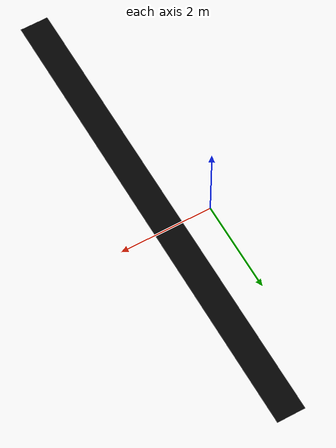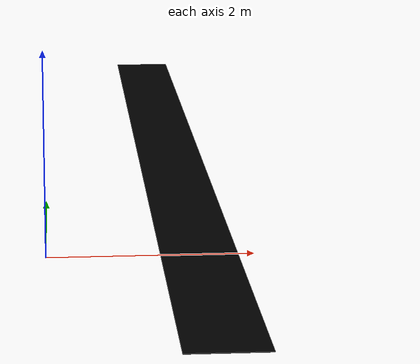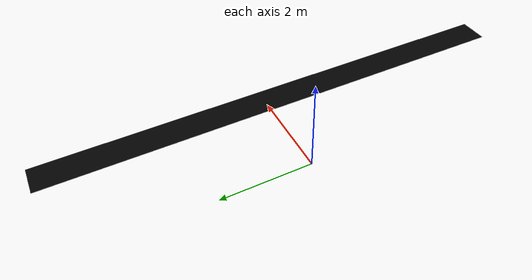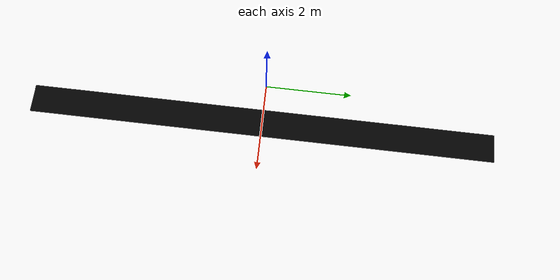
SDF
<?xml version="1.0" ?>
<sdf version="1.5">
  <world name="hrwros_world">
    <!-- Set the initial camera pose to be looking at the workspace. -->
    <gui>
      <camera name="user_camera">
        <pose>-4.33 1.88 6.11 0 0.9 -0.27</pose>
      </camera>
    </gui>

    <physics type="ode">
      <real_time_factor>1</real_time_factor>
    </physics>

    <!-- Disable shadows. -->
    <scene>
      <shadows>false</shadows>
    </scene>

    <!-- A global light source -->
    <include>
      <uri>model://sun</uri>
    </include>

    <!-- A directed light source -->
    <light name="camera_spot_light" type='spot'>
      <pose>-10 10 10 0 -1 -0.8</pose>
      <diffuse>0.5 0.5 0.5 1</diffuse>
      <specular>0.1 0.1 0.1 1</specular>
      <direction>0 0 -1</direction>
      <attenuation>
        <range>20</range>
        <constant>0.5</constant>
        <linear>0.01</linear>
        <quadratic>0.001</quadratic>
      </attenuation>
      <cast_shadows>0</cast_shadows>
      <spot>
        <inner_angle>0.6</inner_angle>
        <outer_angle>1</outer_angle>
        <falloff>1</falloff>
      </spot>
    </light>

    <include>
      <uri>model://conveyor</uri>
      <pose>1.2 5 0 0 0 -1.571</pose>
    </include>

    <include>
      <uri>model://deletion_wall</uri>
      <pose>1.2 -5.1 1.425 0 0 1.5708</pose>
    </include>

    <!-- Week 5 Assignment1 Part 1 -->
    <!-- Include the two logical camera models here -->

  </world>
</sdf>

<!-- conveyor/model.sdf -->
<sdf version="1.6">
  <model name="conveyor_belt">

    <model name="conveyor_belt_fixed">
      <static>true</static>
      <pose>0 0 0 0 0 0</pose>
      <link name="link">
        <pose>0 0 0 0 0 0</pose>
      </link>
    </model>

    <model name="conveyor_belt_moving">
      <static>false</static>
      <pose>0 0 0.92 0 0 0</pose>
      <link name="belt">
        <pose>5 0 -0.003 0 0 0</pose>

        <inertial>
          <inertia>
            <ixx>3.8185</ixx>
            <ixy>0</ixy>
            <ixz>0</ixz>
            <iyy>1781.5</iyy>
            <iyz>0</iyz>
            <izz>1784.72</izz>
          </inertia>
          <mass>100</mass>
        </inertial>

        <collision name="belt_collision">
          <geometry>
            <box>
              <size>10 0.6 0.006</size>
            </box>
          </geometry>

          <surface>
            <friction>
              <ode>
                <mu>1.0</mu>
                <mu2>1.0</mu2>
              </ode>
              <torsional>
                <coefficient>1000.0</coefficient>
                <patch_radius>0.1</patch_radius>
              </torsional>
            </friction>
          </surface>

        </collision>

        <visual name="visual">
        <geometry>
          <box>
            <size>10 0.6 0.006</size>
          </box>
        </geometry>
        <material>
          <ambient>0 0 0 1</ambient>
          <diffuse>0 0 0 1</diffuse>
          <specular>0.1 0.1 0.1 1</specular>
          <emissive>0 0 0 0</emissive>
        </material>
      </visual>

      </link>
    </model>

    <joint name="belt_joint" type="prismatic">
      <parent>conveyor_belt_fixed::link</parent>
      <child>conveyor_belt_moving::belt</child>
      <axis>
        <xyz>1 0 0</xyz>
        <limit>
          <lower>0</lower>
          <upper>1.0</upper>
        </limit>
      </axis>
    </joint>

    <plugin name="conveyor_belt_plugin" filename="libROSConveyorBeltPlugin.so">
      <robot_namespace>/gazebo_sim</robot_namespace>
      <population_rate_modifier_topic>/gazebo_sim/population/rate_modifier</population_rate_modifier_topic>
      <link>conveyor_belt::conveyor_belt_moving::belt</link>
      <power>0</power>
      <min_velocity>0.0</min_velocity>
      <max_velocity>1.0</max_velocity>
    </plugin>

  </model>
</sdf>

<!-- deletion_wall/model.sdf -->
<sdf version="1.6">
  <model name="deletion_wall">

    <static>true</static>
    <link name="sensing_link">
      <gravity>false</gravity>
      <sensor name="object_disposal_contact" type="contact">
        <update_rate>10</update_rate>
        <contact>
           <collision>collision</collision>
        </contact>
      </sensor>
      <collision name="collision">
        <max_contacts>10</max_contacts>
        <geometry>
          <box>
            <size>0.1 1 1</size>
          </box>
        </geometry>
      </collision>
      <visual name="visual">
        <geometry>
          <box>
            <size>0.1 1 1</size>
          </box>
        </geometry>
        <cast_shadows>0</cast_shadows>

        <transparency>100</transparency>
      </visual>
    </link>

    <plugin name="object_disposal_plugin" filename="libObjectDisposalPlugin.so">
      <contact_sensor_name>object_disposal_contact</contact_sensor_name>
      <contact_side_normal>1 0 0</contact_side_normal>
      <disposal_pose>30 30 0 0 0 0</disposal_pose>
      <update_rate>5</update_rate>
    </plugin>

  </model>
</sdf>
